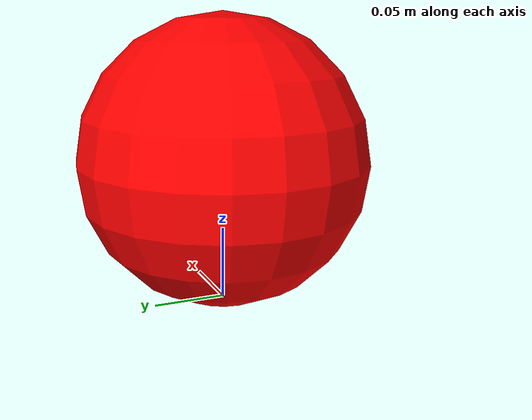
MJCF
<!-- All objects for pusher are centered at 0 0 and bottom touches z = 0 -->
<!-- They must have body name "pusher_object" and free joint named "pusher_object_free_joint"-->
<mujoco model="pusher_object_default">
	<worldbody>
	<body name="pusher_object" pos="0 0 0">
		<geom pos="0 0 0.1" size="0.1" type="sphere" rgba="1 0 0 1"/>
		<geom pos="0 0 0.1" size="0.098" type="sphere" rgba="1 0 0 1" group="1" conaffinity="0" contype="0"/>
		<joint type="free" name="pusher_object_free_joint"/>
	</body>
	<geom name="pusher_target_g0" pos="0 0 0.1" size="0.099" type="sphere" rgba="0 1 0 1" conaffinity="0" contype="0"/>
	<geom name="pusher_target_g1" pos="0 0 0.1" size="0.097" type="sphere" rgba="0 1 0 1" conaffinity="0" contype="0" group="1"/>
</worldbody>
</mujoco>
